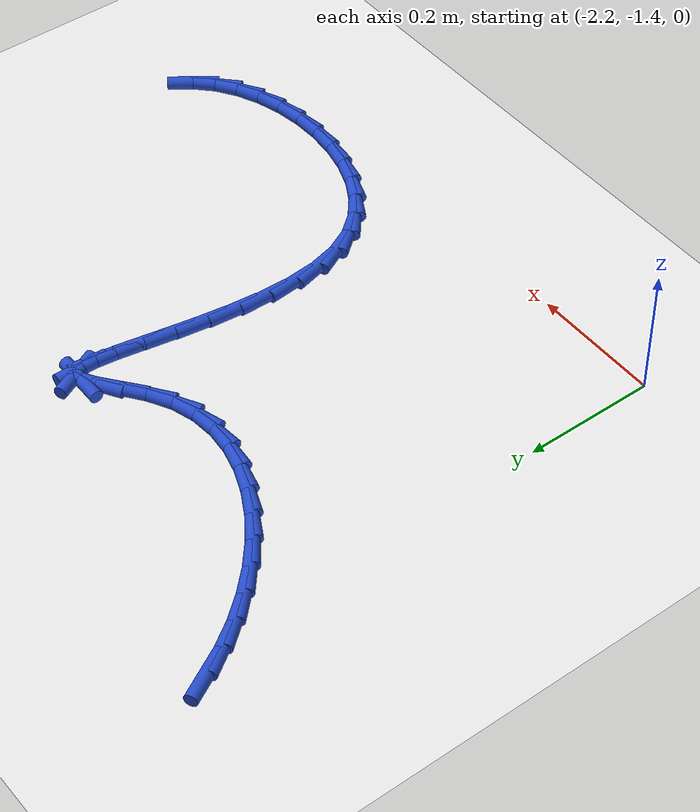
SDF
<sdf version="1.6">
 <world name="default">
  <model name="ground_plane">
   <static>1</static>
   <link name="link">
    <collision name="collision">
     <geometry><plane><normal>0 0 1</normal><size>100 100</size></plane></geometry>
     <surface><friction><ode><mu>100</mu><mu2>50</mu2></ode></friction></surface>
    </collision>
    <visual name="visual">
     <cast_shadows>0</cast_shadows>
     <geometry><plane><normal>0 0 1</normal><size>100 100</size></plane></geometry>
     <material>
      <script><uri>file://media/materials/scripts/gazebo.material</uri><name>Gazebo/WhiteGlow</name></script>
     </material>
    </visual>
   </link>
  </model>
  <model name="line">
   <link name="link_148">
    <pose>-2.240255256706063 -0.6482161635708343 0.01 0 1.57 -1.0785741309954289</pose>
    <collision name="collision">
     <geometry><cylinder><radius>0.01</radius><length>0.08</length></cylinder></geometry>
    </collision>
    <visual name="visual">
     <material>
      <script><name>Gazebo/Blue</name><uri>file://media/materials/scripts/gazebo.material</uri></script>
     </material>
     <geometry><cylinder><radius>0.01</radius><length>0.08</length></cylinder></geometry>
    </visual>
   </link>
   <link name="link_149">
    <pose>-2.220298552100549 -0.6854317442101304 0.01 0 1.57 -0.9821663800448603</pose>
    <collision name="collision">
     <geometry><cylinder><radius>0.01</radius><length>0.08</length></cylinder></geometry>
    </collision>
    <visual name="visual">
     <material>
      <script><name>Gazebo/Blue</name><uri>file://media/materials/scripts/gazebo.material</uri></script>
     </material>
     <geometry><cylinder><radius>0.01</radius><length>0.08</length></cylinder></geometry>
    </visual>
   </link>
   <link name="link_150">
    <pose>-2.1963018562686214 -0.7213779079154145 0.01 0 1.57 -0.8910314791776995</pose>
    <collision name="collision">
     <geometry><cylinder><radius>0.01</radius><length>0.08</length></cylinder></geometry>
    </collision>
    <visual name="visual">
     <material>
      <script><name>Gazebo/Blue</name><uri>file://media/materials/scripts/gazebo.material</uri></script>
     </material>
     <geometry><cylinder><radius>0.01</radius><length>0.08</length></cylinder></geometry>
    </visual>
   </link>
   <link name="link_151">
    <pose>-2.1687790684482726 -0.7554292792610575 0.01 0 1.57 -0.8014477637257842</pose>
    <collision name="collision">
     <geometry><cylinder><radius>0.01</radius><length>0.08</length></cylinder></geometry>
    </collision>
    <visual name="visual">
     <material>
      <script><name>Gazebo/Blue</name><uri>file://media/materials/scripts/gazebo.material</uri></script>
     </material>
     <geometry><cylinder><radius>0.01</radius><length>0.08</length></cylinder></geometry>
    </visual>
   </link>
   <link name="link_152">
    <pose>-2.1382440878774953 -0.7869604828214309 0.01 0 1.57 -0.7098714011841158</pose>
    <collision name="collision">
     <geometry><cylinder><radius>0.01</radius><length>0.08</length></cylinder></geometry>
    </collision>
    <visual name="visual">
     <material>
      <script><name>Gazebo/Blue</name><uri>file://media/materials/scripts/gazebo.material</uri></script>
     </material>
     <geometry><cylinder><radius>0.01</radius><length>0.08</length></cylinder></geometry>
    </visual>
   </link>
   <link name="link_153">
    <pose>-2.1052108137942813 -0.8153461431709056 0.01 0 1.57 -0.6126853457235684</pose>
    <collision name="collision">
     <geometry><cylinder><radius>0.01</radius><length>0.08</length></cylinder></geometry>
    </collision>
    <visual name="visual">
     <material>
      <script><name>Gazebo/Blue</name><uri>file://media/materials/scripts/gazebo.material</uri></script>
     </material>
     <geometry><cylinder><radius>0.01</radius><length>0.08</length></cylinder></geometry>
    </visual>
   </link>
   <link name="link_154">
    <pose>-2.070193145436624 -0.8399608848838528 0.01 0 1.57 -0.5059930242557574</pose>
    <collision name="collision">
     <geometry><cylinder><radius>0.01</radius><length>0.08</length></cylinder></geometry>
    </collision>
    <visual name="visual">
     <material>
      <script><name>Gazebo/Blue</name><uri>file://media/materials/scripts/gazebo.material</uri></script>
     </material>
     <geometry><cylinder><radius>0.01</radius><length>0.08</length></cylinder></geometry>
    </visual>
   </link>
   <link name="link_155">
    <pose>-2.0337049820425137 -0.8601793325346434 0.01 0 1.57 -0.3855352187606898</pose>
    <collision name="collision">
     <geometry><cylinder><radius>0.01</radius><length>0.08</length></cylinder></geometry>
    </collision>
    <visual name="visual">
     <material>
      <script><name>Gazebo/Blue</name><uri>file://media/materials/scripts/gazebo.material</uri></script>
     </material>
     <geometry><cylinder><radius>0.01</radius><length>0.08</length></cylinder></geometry>
    </visual>
   </link>
   <link name="link_156">
    <pose>-1.9962602228499455 -0.8753761106976485 0.01 0 1.57 -0.24691210642388567</pose>
    <collision name="collision">
     <geometry><cylinder><radius>0.01</radius><length>0.08</length></cylinder></geometry>
    </collision>
    <visual name="visual">
     <material>
      <script><name>Gazebo/Blue</name><uri>file://media/materials/scripts/gazebo.material</uri></script>
     </material>
     <geometry><cylinder><radius>0.01</radius><length>0.08</length></cylinder></geometry>
    </visual>
   </link>
   <link name="link_157">
    <pose>-1.9583727670969104 -0.8849258439472396 0.01 0 1.57 -0.0864481401753167</pose>
    <collision name="collision">
     <geometry><cylinder><radius>0.01</radius><length>0.08</length></cylinder></geometry>
    </collision>
    <visual name="visual">
     <material>
      <script><name>Gazebo/Blue</name><uri>file://media/materials/scripts/gazebo.material</uri></script>
     </material>
     <geometry><cylinder><radius>0.01</radius><length>0.08</length></cylinder></geometry>
    </visual>
   </link>
   <link name="link_158">
    <pose>-1.9205565140214007 -0.8882031568577873 0.01 0 1.57 0.09693858406371489</pose>
    <collision name="collision">
     <geometry><cylinder><radius>0.01</radius><length>0.08</length></cylinder></geometry>
    </collision>
    <visual name="visual">
     <material>
      <script><name>Gazebo/Blue</name><uri>file://media/materials/scripts/gazebo.material</uri></script>
     </material>
     <geometry><cylinder><radius>0.01</radius><length>0.08</length></cylinder></geometry>
    </visual>
   </link>
   <link name="link_159">
    <pose>-1.883325362861409 -0.884582674003663 0.01 0 1.57 0.299157899894846</pose>
    <collision name="collision">
     <geometry><cylinder><radius>0.01</radius><length>0.08</length></cylinder></geometry>
    </collision>
    <visual name="visual">
     <material>
      <script><name>Gazebo/Blue</name><uri>file://media/materials/scripts/gazebo.material</uri></script>
     </material>
     <geometry><cylinder><radius>0.01</radius><length>0.08</length></cylinder></geometry>
    </visual>
   </link>
   <link name="link_160">
    <pose>-1.8471932128549287 -0.8734390199592379 0.01 0 1.57 0.5043864430265332</pose>
    <collision name="collision">
     <geometry><cylinder><radius>0.01</radius><length>0.08</length></cylinder></geometry>
    </collision>
    <visual name="visual">
     <material>
      <script><name>Gazebo/Blue</name><uri>file://media/materials/scripts/gazebo.material</uri></script>
     </material>
     <geometry><cylinder><radius>0.01</radius><length>0.08</length></cylinder></geometry>
    </visual>
   </link>
   <link name="link_161">
    <pose>-1.812725822427297 -0.8544126147981871 0.01 0 1.57 0.6386142683417845</pose>
    <collision name="collision">
     <geometry><cylinder><radius>0.01</radius><length>0.08</length></cylinder></geometry>
    </collision>
    <visual name="visual">
     <material>
      <script><name>Gazebo/Blue</name><uri>file://media/materials/scripts/gazebo.material</uri></script>
     </material>
     <geometry><cylinder><radius>0.01</radius><length>0.08</length></cylinder></geometry>
    </visual>
   </link>
   <link name="link_162">
    <pose>-1.78125015972619 -0.8310453303634173 0.01 0 1.57 0.6733264100751437</pose>
    <collision name="collision">
     <geometry><cylinder><radius>0.01</radius><length>0.08</length></cylinder></geometry>
    </collision>
    <visual name="visual">
     <material>
      <script><name>Gazebo/Blue</name><uri>file://media/materials/scripts/gazebo.material</uri></script>
     </material>
     <geometry><cylinder><radius>0.01</radius><length>0.08</length></cylinder></geometry>
    </visual>
   </link>
   <link name="link_163">
    <pose>-1.7546717165560148 -0.8098441637161182 0.01 0 1.57 0.5629641691763075</pose>
    <collision name="collision">
     <geometry><cylinder><radius>0.01</radius><length>0.08</length></cylinder></geometry>
    </collision>
    <visual name="visual">
     <material>
      <script><name>Gazebo/Blue</name><uri>file://media/materials/scripts/gazebo.material</uri></script>
     </material>
     <geometry><cylinder><radius>0.01</radius><length>0.08</length></cylinder></geometry>
    </visual>
   </link>
   <link name="link_164">
    <pose>-1.734901472822193 -0.7973674294432749 0.01 0 1.57 -0.016881548542554334</pose>
    <collision name="collision">
     <geometry><cylinder><radius>0.01</radius><length>0.08</length></cylinder></geometry>
    </collision>
    <visual name="visual">
     <material>
      <script><name>Gazebo/Blue</name><uri>file://media/materials/scripts/gazebo.material</uri></script>
     </material>
     <geometry><cylinder><radius>0.01</radius><length>0.08</length></cylinder></geometry>
    </visual>
   </link>
   <link name="link_165">
    <pose>-1.722825896228691 -0.7975713032431913 0.01 0 1.57 -1.1401361835563963</pose>
    <collision name="collision">
     <geometry><cylinder><radius>0.01</radius><length>0.08</length></cylinder></geometry>
    </collision>
    <visual name="visual">
     <material>
      <script><name>Gazebo/Blue</name><uri>file://media/materials/scripts/gazebo.material</uri></script>
     </material>
     <geometry><cylinder><radius>0.01</radius><length>0.08</length></cylinder></geometry>
    </visual>
   </link>
   <link name="link_166">
    <pose>-1.7173735648878639 -0.8094391545958985 0.01 0 1.57 -1.565281797927555</pose>
    <collision name="collision">
     <geometry><cylinder><radius>0.01</radius><length>0.08</length></cylinder></geometry>
    </collision>
    <visual name="visual">
     <material>
      <script><name>Gazebo/Blue</name><uri>file://media/materials/scripts/gazebo.material</uri></script>
     </material>
     <geometry><cylinder><radius>0.01</radius><length>0.08</length></cylinder></geometry>
    </visual>
   </link>
   <link name="link_167">
    <pose>-1.71725249223232 -0.8313941449821242 0.01 0 1.57 1.4428865784999305</pose>
    <collision name="collision">
     <geometry><cylinder><radius>0.01</radius><length>0.08</length></cylinder></geometry>
    </collision>
    <visual name="visual">
     <material>
      <script><name>Gazebo/Blue</name><uri>file://media/materials/scripts/gazebo.material</uri></script>
     </material>
     <geometry><cylinder><radius>0.01</radius><length>0.08</length></cylinder></geometry>
    </visual>
   </link>
   <link name="link_168">
    <pose>-1.7211706916946665 -0.8618594358825951 0.01 0 1.57 1.3944208225085515</pose>
    <collision name="collision">
     <geometry><cylinder><radius>0.01</radius><length>0.08</length></cylinder></geometry>
    </collision>
    <visual name="visual">
     <material>
      <script><name>Gazebo/Blue</name><uri>file://media/materials/scripts/gazebo.material</uri></script>
     </material>
     <geometry><cylinder><radius>0.01</radius><length>0.08</length></cylinder></geometry>
    </visual>
   </link>
   <link name="link_169">
    <pose>-1.7278361767075125 -0.8992581887780383 0.01 0 1.57 1.3830961775285158</pose>
    <collision name="collision">
     <geometry><cylinder><radius>0.01</radius><length>0.08</length></cylinder></geometry>
    </collision>
    <visual name="visual">
     <material>
      <script><name>Gazebo/Blue</name><uri>file://media/materials/scripts/gazebo.material</uri></script>
     </material>
     <geometry><cylinder><radius>0.01</radius><length>0.08</length></cylinder></geometry>
    </visual>
   </link>
   <link name="link_170">
    <pose>-1.7359569607034646 -0.9420135651491809 0.01 0 1.57 1.3946238470715917</pose>
    <collision name="collision">
     <geometry><cylinder><radius>0.01</radius><length>0.08</length></cylinder></geometry>
    </collision>
    <visual name="visual">
     <material>
      <script><name>Gazebo/Blue</name><uri>file://media/materials/scripts/gazebo.material</uri></script>
     </material>
     <geometry><cylinder><radius>0.01</radius><length>0.08</length></cylinder></geometry>
    </visual>
   </link>
   <link name="link_171">
    <pose>-1.7442410571151317 -0.9885487264767502 0.01 0 1.57 1.4250240055880747</pose>
    <collision name="collision">
     <geometry><cylinder><radius>0.01</radius><length>0.08</length></cylinder></geometry>
    </collision>
    <visual name="visual">
     <material>
      <script><name>Gazebo/Blue</name><uri>file://media/materials/scripts/gazebo.material</uri></script>
     </material>
     <geometry><cylinder><radius>0.01</radius><length>0.08</length></cylinder></geometry>
    </visual>
   </link>
   <link name="link_172">
    <pose>-1.7513964793751207 -1.0372868342414723 0.01 0 1.57 1.475173987833473</pose>
    <collision name="collision">
     <geometry><cylinder><radius>0.01</radius><length>0.08</length></cylinder></geometry>
    </collision>
    <visual name="visual">
     <material>
      <script><name>Gazebo/Blue</name><uri>file://media/materials/scripts/gazebo.material</uri></script>
     </material>
     <geometry><cylinder><radius>0.01</radius><length>0.08</length></cylinder></geometry>
    </visual>
   </link>
   <link name="link_173">
    <pose>-1.7561312409160401 -1.0866510499240754 0.01 0 1.57 1.5496872818047163</pose>
    <collision name="collision">
     <geometry><cylinder><radius>0.01</radius><length>0.08</length></cylinder></geometry>
    </collision>
    <visual name="visual">
     <material>
      <script><name>Gazebo/Blue</name><uri>file://media/materials/scripts/gazebo.material</uri></script>
     </material>
     <geometry><cylinder><radius>0.01</radius><length>0.08</length></cylinder></geometry>
    </visual>
   </link>
   <link name="link_174">
    <pose>-1.7571533551704976 -1.1350645350052857 0.01 0 1.57 -1.4842215115004604</pose>
    <collision name="collision">
     <geometry><cylinder><radius>0.01</radius><length>0.08</length></cylinder></geometry>
    </collision>
    <visual name="visual">
     <material>
      <script><name>Gazebo/Blue</name><uri>file://media/materials/scripts/gazebo.material</uri></script>
     </material>
     <geometry><cylinder><radius>0.01</radius><length>0.08</length></cylinder></geometry>
    </visual>
   </link>
   <link name="link_175">
    <pose>-1.753170835571102 -1.180950450965831 0.01 0 1.57 -1.3295658357858222</pose>
    <collision name="collision">
     <geometry><cylinder><radius>0.01</radius><length>0.08</length></cylinder></geometry>
    </collision>
    <visual name="visual">
     <material>
      <script><name>Gazebo/Blue</name><uri>file://media/materials/scripts/gazebo.material</uri></script>
     </material>
     <geometry><cylinder><radius>0.01</radius><length>0.08</length></cylinder></geometry>
    </visual>
   </link>
   <link name="link_176">
    <pose>-1.7428916955504596 -1.2227319592864365 0.01 0 1.57 -1.120258829283777</pose>
    <collision name="collision">
     <geometry><cylinder><radius>0.01</radius><length>0.08</length></cylinder></geometry>
    </collision>
    <visual name="visual">
     <material>
      <script><name>Gazebo/Blue</name><uri>file://media/materials/scripts/gazebo.material</uri></script>
     </material>
     <geometry><cylinder><radius>0.01</radius><length>0.08</length></cylinder></geometry>
    </visual>
   </link>
   <link name="link_177">
    <pose>-1.7253261630669594 -1.259045527958832 0.01 0 1.57 -0.900285449441706</pose>
    <collision name="collision">
     <geometry><cylinder><radius>0.01</radius><length>0.08</length></cylinder></geometry>
    </collision>
    <visual name="visual">
     <material>
      <script><name>Gazebo/Blue</name><uri>file://media/materials/scripts/gazebo.material</uri></script>
     </material>
     <geometry><cylinder><radius>0.01</radius><length>0.08</length></cylinder></geometry>
    </visual>
   </link>
   <link name="link_178">
    <pose>-1.7010615307829748 -1.2896407355003214 0.01 0 1.57 -0.6967490171911438</pose>
    <collision name="collision">
     <geometry><cylinder><radius>0.01</radius><length>0.08</length></cylinder></geometry>
    </collision>
    <visual name="visual">
     <material>
      <script><name>Gazebo/Blue</name><uri>file://media/materials/scripts/gazebo.material</uri></script>
     </material>
     <geometry><cylinder><radius>0.01</radius><length>0.08</length></cylinder></geometry>
    </visual>
   </link>
   <link name="link_179">
    <pose>-1.671197839544189 -1.3146290640320188 0.01 0 1.57 -0.5160131974467469</pose>
    <collision name="collision">
     <geometry><cylinder><radius>0.01</radius><length>0.08</length></cylinder></geometry>
    </collision>
    <visual name="visual">
     <material>
      <script><name>Gazebo/Blue</name><uri>file://media/materials/scripts/gazebo.material</uri></script>
     </material>
     <geometry><cylinder><radius>0.01</radius><length>0.08</length></cylinder></geometry>
    </visual>
   </link>
   <link name="link_180">
    <pose>-1.6368354040805349 -1.3341221889857136 0.01 0 1.57 -0.3575923842161412</pose>
    <collision name="collision">
     <geometry><cylinder><radius>0.01</radius><length>0.08</length></cylinder></geometry>
    </collision>
    <visual name="visual">
     <material>
      <script><name>Gazebo/Blue</name><uri>file://media/materials/scripts/gazebo.material</uri></script>
     </material>
     <geometry><cylinder><radius>0.01</radius><length>0.08</length></cylinder></geometry>
    </visual>
   </link>
   <link name="link_181">
    <pose>-1.5990745391219447 -1.348231785793193 0.01 0 1.57 -0.21713998628127906</pose>
    <collision name="collision">
     <geometry><cylinder><radius>0.01</radius><length>0.08</length></cylinder></geometry>
    </collision>
    <visual name="visual">
     <material>
      <script><name>Gazebo/Blue</name><uri>file://media/materials/scripts/gazebo.material</uri></script>
     </material>
     <geometry><cylinder><radius>0.01</radius><length>0.08</length></cylinder></geometry>
    </visual>
   </link>
   <link name="link_182">
    <pose>-1.5590155593983515 -1.357069529886246 0.01 0 1.57 -0.08890351506546387</pose>
    <collision name="collision">
     <geometry><cylinder><radius>0.01</radius><length>0.08</length></cylinder></geometry>
    </collision>
    <visual name="visual">
     <material>
      <script><name>Gazebo/Blue</name><uri>file://media/materials/scripts/gazebo.material</uri></script>
     </material>
     <geometry><cylinder><radius>0.01</radius><length>0.08</length></cylinder></geometry>
    </visual>
   </link>
   <link name="link_183">
    <pose>-1.5177587796396876 -1.3607470966966613 0.01 0 1.57 0.033138858961174265</pose>
    <collision name="collision">
     <geometry><cylinder><radius>0.01</radius><length>0.08</length></cylinder></geometry>
    </collision>
    <visual name="visual">
     <material>
      <script><name>Gazebo/Blue</name><uri>file://media/materials/scripts/gazebo.material</uri></script>
     </material>
     <geometry><cylinder><radius>0.01</radius><length>0.08</length></cylinder></geometry>
    </visual>
   </link>
   <link name="link_184">
    <pose>-1.4764045145758864 -1.3593761616562272 0.01 0 1.57 0.15506567869452056</pose>
    <collision name="collision">
     <geometry><cylinder><radius>0.01</radius><length>0.08</length></cylinder></geometry>
    </collision>
    <visual name="visual">
     <material>
      <script><name>Gazebo/Blue</name><uri>file://media/materials/scripts/gazebo.material</uri></script>
     </material>
     <geometry><cylinder><radius>0.01</radius><length>0.08</length></cylinder></geometry>
    </visual>
   </link>
   <link name="link_185">
    <pose>-1.4360530789368788 -1.3530684001967315 0.01 0 1.57 0.2832437050955214</pose>
    <collision name="collision">
     <geometry><cylinder><radius>0.01</radius><length>0.08</length></cylinder></geometry>
    </collision>
    <visual name="visual">
     <material>
      <script><name>Gazebo/Blue</name><uri>file://media/materials/scripts/gazebo.material</uri></script>
     </material>
     <geometry><cylinder><radius>0.01</radius><length>0.08</length></cylinder></geometry>
    </visual>
   </link>
   <link name="link_186">
    <pose>-1.3978047874525985 -1.341935487749963 0.01 0 1.57 0.4246609675443715</pose>
    <collision name="collision">
     <geometry><cylinder><radius>0.01</radius><length>0.08</length></cylinder></geometry>
    </collision>
    <visual name="visual">
     <material>
      <script><name>Gazebo/Blue</name><uri>file://media/materials/scripts/gazebo.material</uri></script>
     </material>
     <geometry><cylinder><radius>0.01</radius><length>0.08</length></cylinder></geometry>
    </visual>
   </link>
   <link name="link_187">
    <pose>-1.3627599548529785 -1.3260890997477104 0.01 0 1.57 0.5869692952172816</pose>
    <collision name="collision">
     <geometry><cylinder><radius>0.01</radius><length>0.08</length></cylinder></geometry>
    </collision>
    <visual name="visual">
     <material>
      <script><name>Gazebo/Blue</name><uri>file://media/materials/scripts/gazebo.material</uri></script>
     </material>
     <geometry><cylinder><radius>0.01</radius><length>0.08</length></cylinder></geometry>
    </visual>
   </link>
   <link name="link_188">
    <pose>-1.3320188958679506 -1.3056409116217615 0.01 0 1.57 0.7748350568808555</pose>
    <collision name="collision">
     <geometry><cylinder><radius>0.01</radius><length>0.08</length></cylinder></geometry>
    </collision>
    <visual name="visual">
     <material>
      <script><name>Gazebo/Blue</name><uri>file://media/materials/scripts/gazebo.material</uri></script>
     </material>
     <geometry><cylinder><radius>0.01</radius><length>0.08</length></cylinder></geometry>
    </visual>
   </link>
   <link name="link_189">
    <pose>-1.306595506219693 -1.2807490273399043 0.01 0 1.57 0.9413444587585376</pose>
    <collision name="collision">
     <geometry><cylinder><radius>0.01</radius><length>0.08</length></cylinder></geometry>
    </collision>
    <visual name="visual">
     <material>
      <script><name>Gazebo/Blue</name><uri>file://media/materials/scripts/gazebo.material</uri></script>
     </material>
     <geometry><cylinder><radius>0.01</radius><length>0.08</length></cylinder></geometry>
    </visual>
   </link>
  </model>
 </world>
</sdf>
